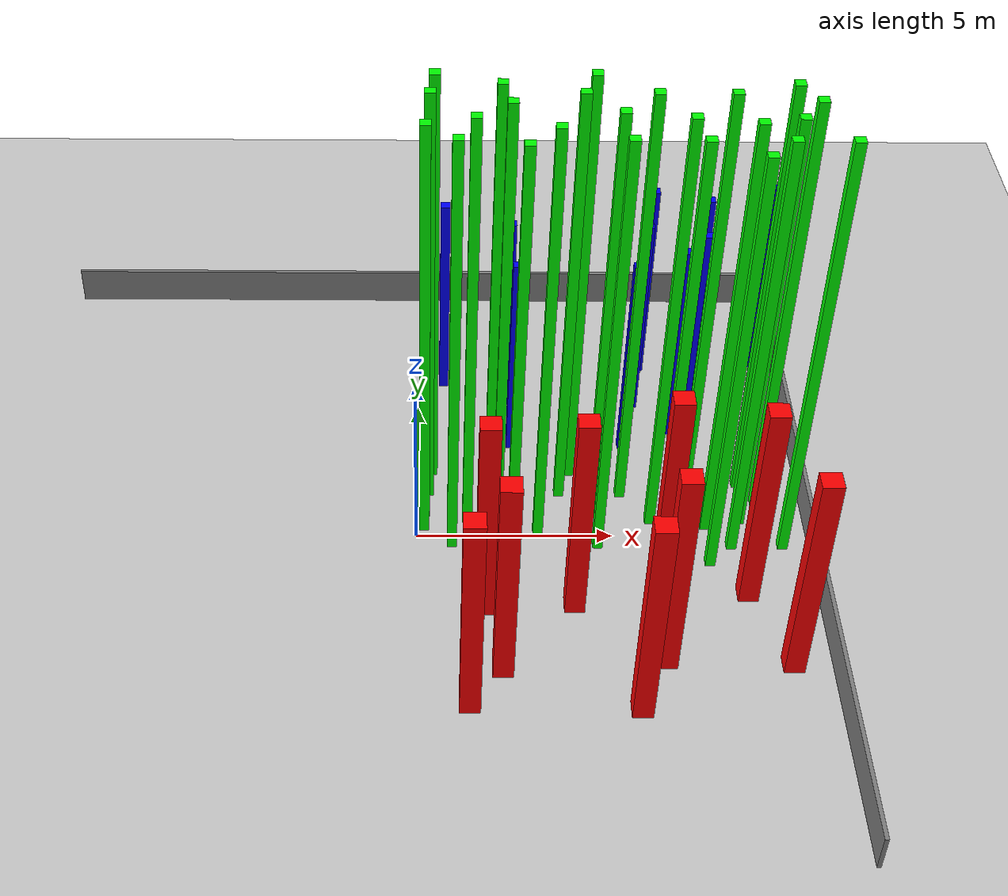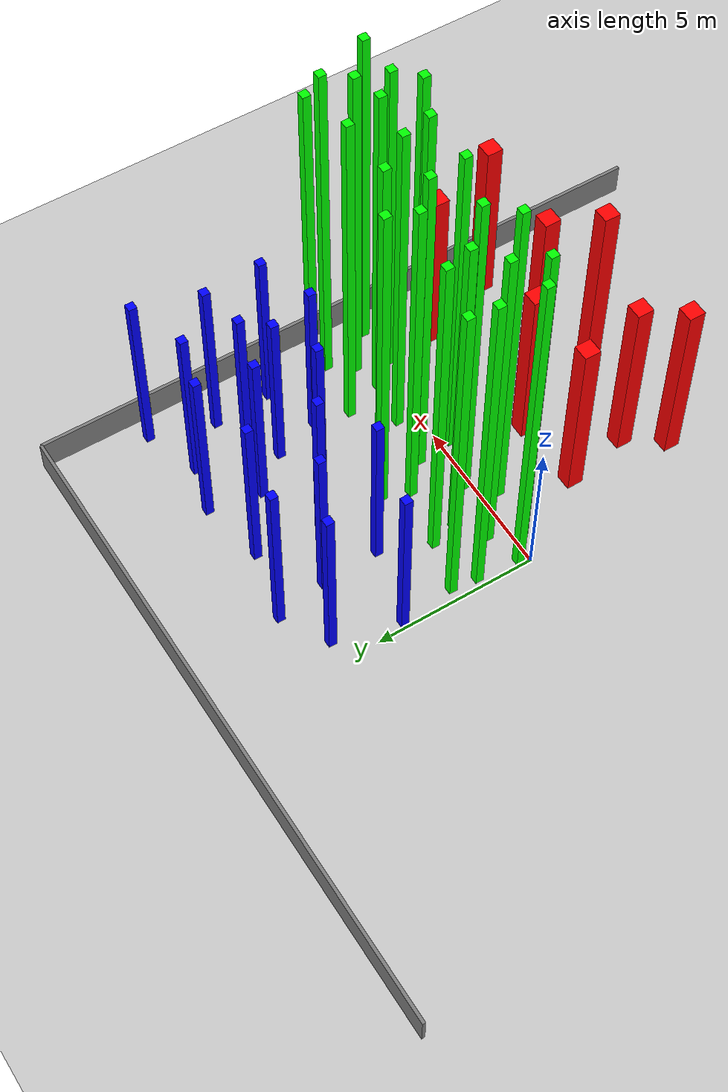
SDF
<sdf version="1.9">
 <world name="Penglai">
  <model name="ground_plane">
   <static>true</static>
   <link name="link">
    <collision name="collision">
     <geometry><plane><normal>0 0 1</normal><size>100 100</size></plane></geometry>
    </collision>
    <visual name="visual">
     <geometry><plane><normal>0 0 1</normal><size>100 100</size></plane></geometry>
     <material>
      <ambient>0.8 0.8 0.8 1</ambient>
      <diffuse>0.8 0.8 0.8 1</diffuse>
      <specular>0.8 0.8 0.8 1</specular>
     </material>
    </visual>
    <inertial>
     <mass>1</mass>
     <inertia><ixx>1</ixx><ixy>0</ixy><ixz>0</ixz><iyy>1</iyy><iyz>0</iyz><izz>1</izz></inertia>
    </inertial>
   </link>
  </model>
  <model name="wall_2">
   <static>true</static>
   <type>wall</type>
   <pose>10.000000 0.000000 0.500000 0 0 1.570796</pose>
   <link name="link">
    <collision name="collision">
     <geometry><box><size>20.000000 0.100000 1.000000</size></box></geometry>
    </collision>
    <visual name="visual">
     <geometry><box><size>20.000000 0.100000 1.000000</size></box></geometry>
     <material><diffuse>0.5 0.5 0.5 1</diffuse></material>
    </visual>
   </link>
  </model>
  <model name="wall_3">
   <static>true</static>
   <type>wall</type>
   <pose>0.000000 10.000000 0.500000 0 0 3.141593</pose>
   <link name="link">
    <collision name="collision">
     <geometry><box><size>20.000000 0.100000 1.000000</size></box></geometry>
    </collision>
    <visual name="visual">
     <geometry><box><size>20.000000 0.100000 1.000000</size></box></geometry>
     <material><diffuse>0.5 0.5 0.5 1</diffuse></material>
    </visual>
   </link>
  </model>
  <model name="box_6">
   <static>true</static>
   <type>box</type>
   <pose>0.700000 6.100000 3.000000 0 0 0</pose>
   <link name="link">
    <collision name="collision">
     <geometry><box><size>0.250000 0.250000 6.000000</size></box></geometry>
    </collision>
    <visual name="visual">
     <geometry><box><size>0.250000 0.250000 6.000000</size></box></geometry>
     <material><diffuse>0 0 1 1</diffuse></material>
    </visual>
   </link>
  </model>
  <model name="box_7">
   <static>true</static>
   <type>box</type>
   <pose>0.200000 4.100000 3.000000 0 0 0</pose>
   <link name="link">
    <collision name="collision">
     <geometry><box><size>0.250000 0.250000 6.000000</size></box></geometry>
    </collision>
    <visual name="visual">
     <geometry><box><size>0.250000 0.250000 6.000000</size></box></geometry>
     <material><diffuse>0 0 1 1</diffuse></material>
    </visual>
   </link>
  </model>
  <model name="box_8">
   <static>true</static>
   <type>box</type>
   <pose>2.400000 5.300000 3.000000 0 0 0</pose>
   <link name="link">
    <collision name="collision">
     <geometry><box><size>0.250000 0.250000 6.000000</size></box></geometry>
    </collision>
    <visual name="visual">
     <geometry><box><size>0.250000 0.250000 6.000000</size></box></geometry>
     <material><diffuse>0 0 1 1</diffuse></material>
    </visual>
   </link>
  </model>
  <model name="box_9">
   <static>true</static>
   <type>box</type>
   <pose>4.200000 6.400000 3.000000 0 0 0</pose>
   <link name="link">
    <collision name="collision">
     <geometry><box><size>0.250000 0.250000 6.000000</size></box></geometry>
    </collision>
    <visual name="visual">
     <geometry><box><size>0.250000 0.250000 6.000000</size></box></geometry>
     <material><diffuse>0 0 1 1</diffuse></material>
    </visual>
   </link>
  </model>
  <model name="box_10">
   <static>true</static>
   <type>box</type>
   <pose>5.900000 5.200000 3.000000 0 0 0</pose>
   <link name="link">
    <collision name="collision">
     <geometry><box><size>0.250000 0.250000 6.000000</size></box></geometry>
    </collision>
    <visual name="visual">
     <geometry><box><size>0.250000 0.250000 6.000000</size></box></geometry>
     <material><diffuse>0 0 1 1</diffuse></material>
    </visual>
   </link>
  </model>
  <model name="box_11">
   <static>true</static>
   <type>box</type>
   <pose>4.000000 4.400000 3.000000 0 0 0</pose>
   <link name="link">
    <collision name="collision">
     <geometry><box><size>0.250000 0.250000 6.000000</size></box></geometry>
    </collision>
    <visual name="visual">
     <geometry><box><size>0.250000 0.250000 6.000000</size></box></geometry>
     <material><diffuse>0 0 1 1</diffuse></material>
    </visual>
   </link>
  </model>
  <model name="box_12">
   <static>true</static>
   <type>box</type>
   <pose>6.800000 4.100000 3.000000 0 0 0</pose>
   <link name="link">
    <collision name="collision">
     <geometry><box><size>0.250000 0.250000 6.000000</size></box></geometry>
    </collision>
    <visual name="visual">
     <geometry><box><size>0.250000 0.250000 6.000000</size></box></geometry>
     <material><diffuse>0 0 1 1</diffuse></material>
    </visual>
   </link>
  </model>
  <model name="box_13">
   <static>true</static>
   <type>box</type>
   <pose>7.400000 4.800000 3.000000 0 0 0</pose>
   <link name="link">
    <collision name="collision">
     <geometry><box><size>0.250000 0.250000 6.000000</size></box></geometry>
    </collision>
    <visual name="visual">
     <geometry><box><size>0.250000 0.250000 6.000000</size></box></geometry>
     <material><diffuse>0 0 1 1</diffuse></material>
    </visual>
   </link>
  </model>
  <model name="box_14">
   <static>true</static>
   <type>box</type>
   <pose>8.700000 5.100000 3.000000 0 0 0</pose>
   <link name="link">
    <collision name="collision">
     <geometry><box><size>0.250000 0.250000 6.000000</size></box></geometry>
    </collision>
    <visual name="visual">
     <geometry><box><size>0.250000 0.250000 6.000000</size></box></geometry>
     <material><diffuse>0 0 1 1</diffuse></material>
    </visual>
   </link>
  </model>
  <model name="box_15">
   <static>true</static>
   <type>box</type>
   <pose>7.600000 6.400000 3.000000 0 0 0</pose>
   <link name="link">
    <collision name="collision">
     <geometry><box><size>0.250000 0.250000 6.000000</size></box></geometry>
    </collision>
    <visual name="visual">
     <geometry><box><size>0.250000 0.250000 6.000000</size></box></geometry>
     <material><diffuse>0 0 1 1</diffuse></material>
    </visual>
   </link>
  </model>
  <model name="box_16">
   <static>true</static>
   <type>box</type>
   <pose>8.800000 3.300000 3.000000 0 0 0</pose>
   <link name="link">
    <collision name="collision">
     <geometry><box><size>0.250000 0.250000 6.000000</size></box></geometry>
    </collision>
    <visual name="visual">
     <geometry><box><size>0.250000 0.250000 6.000000</size></box></geometry>
     <material><diffuse>0 0 1 1</diffuse></material>
    </visual>
   </link>
  </model>
  <model name="box_24">
   <static>true</static>
   <type>box</type>
   <pose>2.500000 3.500000 3.000000 0 0 0</pose>
   <link name="link">
    <collision name="collision">
     <geometry><box><size>0.250000 0.250000 6.000000</size></box></geometry>
    </collision>
    <visual name="visual">
     <geometry><box><size>0.250000 0.250000 6.000000</size></box></geometry>
     <material><diffuse>0 0 1 1</diffuse></material>
    </visual>
   </link>
  </model>
  <model name="box_25">
   <static>true</static>
   <type>box</type>
   <pose>5.500000 3.500000 3.000000 0 0 0</pose>
   <link name="link">
    <collision name="collision">
     <geometry><box><size>0.250000 0.250000 6.000000</size></box></geometry>
    </collision>
    <visual name="visual">
     <geometry><box><size>0.250000 0.250000 6.000000</size></box></geometry>
     <material><diffuse>0 0 1 1</diffuse></material>
    </visual>
   </link>
  </model>
  <model name="box_26">
   <static>true</static>
   <type>box</type>
   <pose>2.100000 6.900000 3.000000 0 0 0</pose>
   <link name="link">
    <collision name="collision">
     <geometry><box><size>0.250000 0.250000 6.000000</size></box></geometry>
    </collision>
    <visual name="visual">
     <geometry><box><size>0.250000 0.250000 6.000000</size></box></geometry>
     <material><diffuse>0 0 1 1</diffuse></material>
    </visual>
   </link>
  </model>
  <model name="box_27">
   <static>true</static>
   <type>box</type>
   <pose>6.200000 6.800000 3.000000 0 0 0</pose>
   <link name="link">
    <collision name="collision">
     <geometry><box><size>0.250000 0.250000 6.000000</size></box></geometry>
    </collision>
    <visual name="visual">
     <geometry><box><size>0.250000 0.250000 6.000000</size></box></geometry>
     <material><diffuse>0 0 1 1</diffuse></material>
    </visual>
   </link>
  </model>
  <model name="box_29">
   <static>true</static>
   <type>box</type>
   <pose>7.200000 2.700000 3.000000 0 0 0</pose>
   <link name="link">
    <collision name="collision">
     <geometry><box><size>0.250000 0.250000 6.000000</size></box></geometry>
    </collision>
    <visual name="visual">
     <geometry><box><size>0.250000 0.250000 6.000000</size></box></geometry>
     <material><diffuse>0 0 1 1</diffuse></material>
    </visual>
   </link>
  </model>
  <model name="box_30">
   <static>true</static>
   <type>box</type>
   <pose>9.300000 7.000000 3.000000 0 0 0</pose>
   <link name="link">
    <collision name="collision">
     <geometry><box><size>0.250000 0.250000 6.000000</size></box></geometry>
    </collision>
    <visual name="visual">
     <geometry><box><size>0.250000 0.250000 6.000000</size></box></geometry>
     <material><diffuse>0 0 1 1</diffuse></material>
    </visual>
   </link>
  </model>
  <model name="box_51">
   <static>true</static>
   <type>box</type>
   <pose>0.300000 1.600000 6.000000 0 0 0</pose>
   <link name="link">
    <collision name="collision">
     <geometry><box><size>0.250000 0.250000 12.000000</size></box></geometry>
    </collision>
    <visual name="visual">
     <geometry><box><size>0.250000 0.250000 12.000000</size></box></geometry>
     <material><diffuse>0 1 0 1</diffuse></material>
    </visual>
   </link>
  </model>
  <model name="box_52">
   <static>true</static>
   <type>box</type>
   <pose>0.400000 2.400000 6.000000 0 0 0</pose>
   <link name="link">
    <collision name="collision">
     <geometry><box><size>0.250000 0.250000 12.000000</size></box></geometry>
    </collision>
    <visual name="visual">
     <geometry><box><size>0.250000 0.250000 12.000000</size></box></geometry>
     <material><diffuse>0 1 0 1</diffuse></material>
    </visual>
   </link>
  </model>
  <model name="box_53">
   <static>true</static>
   <type>box</type>
   <pose>1.900000 2.000000 6.000000 0 0 0</pose>
   <link name="link">
    <collision name="collision">
     <geometry><box><size>0.250000 0.250000 12.000000</size></box></geometry>
    </collision>
    <visual name="visual">
     <geometry><box><size>0.250000 0.250000 12.000000</size></box></geometry>
     <material><diffuse>0 1 0 1</diffuse></material>
    </visual>
   </link>
  </model>
  <model name="box_54">
   <static>true</static>
   <type>box</type>
   <pose>2.100000 1.200000 6.000000 0 0 0</pose>
   <link name="link">
    <collision name="collision">
     <geometry><box><size>0.250000 0.250000 12.000000</size></box></geometry>
    </collision>
    <visual name="visual">
     <geometry><box><size>0.250000 0.250000 12.000000</size></box></geometry>
     <material><diffuse>0 1 0 1</diffuse></material>
    </visual>
   </link>
  </model>
  <model name="box_55">
   <static>true</static>
   <type>box</type>
   <pose>1.300000 0.600000 6.000000 0 0 0</pose>
   <link name="link">
    <collision name="collision">
     <geometry><box><size>0.250000 0.250000 12.000000</size></box></geometry>
    </collision>
    <visual name="visual">
     <geometry><box><size>0.250000 0.250000 12.000000</size></box></geometry>
     <material><diffuse>0 1 0 1</diffuse></material>
    </visual>
   </link>
  </model>
  <model name="box_56">
   <static>true</static>
   <type>box</type>
   <pose>0.900000 -0.300000 6.000000 0 0 0</pose>
   <link name="link">
    <collision name="collision">
     <geometry><box><size>0.250000 0.250000 12.000000</size></box></geometry>
    </collision>
    <visual name="visual">
     <geometry><box><size>0.250000 0.250000 12.000000</size></box></geometry>
     <material><diffuse>0 1 0 1</diffuse></material>
    </visual>
   </link>
  </model>
  <model name="box_57">
   <static>true</static>
   <type>box</type>
   <pose>0.200000 0.300000 6.000000 0 0 0</pose>
   <link name="link">
    <collision name="collision">
     <geometry><box><size>0.250000 0.250000 12.000000</size></box></geometry>
    </collision>
    <visual name="visual">
     <geometry><box><size>0.250000 0.250000 12.000000</size></box></geometry>
     <material><diffuse>0 1 0 1</diffuse></material>
    </visual>
   </link>
  </model>
  <model name="box_59">
   <static>true</static>
   <type>box</type>
   <pose>2.400000 -0.500000 6.000000 0 0 0</pose>
   <link name="link">
    <collision name="collision">
     <geometry><box><size>0.250000 0.250000 12.000000</size></box></geometry>
    </collision>
    <visual name="visual">
     <geometry><box><size>0.250000 0.250000 12.000000</size></box></geometry>
     <material><diffuse>0 1 0 1</diffuse></material>
    </visual>
   </link>
  </model>
  <model name="box_60">
   <static>true</static>
   <type>box</type>
   <pose>3.100000 0.200000 6.000000 0 0 0</pose>
   <link name="link">
    <collision name="collision">
     <geometry><box><size>0.250000 0.250000 12.000000</size></box></geometry>
    </collision>
    <visual name="visual">
     <geometry><box><size>0.250000 0.250000 12.000000</size></box></geometry>
     <material><diffuse>0 1 0 1</diffuse></material>
    </visual>
   </link>
  </model>
  <model name="box_61">
   <static>true</static>
   <type>box</type>
   <pose>3.700000 1.600000 6.000000 0 0 0</pose>
   <link name="link">
    <collision name="collision">
     <geometry><box><size>0.250000 0.250000 12.000000</size></box></geometry>
    </collision>
    <visual name="visual">
     <geometry><box><size>0.250000 0.250000 12.000000</size></box></geometry>
     <material><diffuse>0 1 0 1</diffuse></material>
    </visual>
   </link>
  </model>
  <model name="box_62">
   <static>true</static>
   <type>box</type>
   <pose>4.000000 2.400000 6.000000 0 0 0</pose>
   <link name="link">
    <collision name="collision">
     <geometry><box><size>0.250000 0.250000 12.000000</size></box></geometry>
    </collision>
    <visual name="visual">
     <geometry><box><size>0.250000 0.250000 12.000000</size></box></geometry>
     <material><diffuse>0 1 0 1</diffuse></material>
    </visual>
   </link>
  </model>
  <model name="box_63">
   <static>true</static>
   <type>box</type>
   <pose>5.300000 1.600000 6.000000 0 0 0</pose>
   <link name="link">
    <collision name="collision">
     <geometry><box><size>0.250000 0.250000 12.000000</size></box></geometry>
    </collision>
    <visual name="visual">
     <geometry><box><size>0.250000 0.250000 12.000000</size></box></geometry>
     <material><diffuse>0 1 0 1</diffuse></material>
    </visual>
   </link>
  </model>
  <model name="box_64">
   <static>true</static>
   <type>box</type>
   <pose>4.500000 0.800000 6.000000 0 0 0</pose>
   <link name="link">
    <collision name="collision">
     <geometry><box><size>0.250000 0.250000 12.000000</size></box></geometry>
    </collision>
    <visual name="visual">
     <geometry><box><size>0.250000 0.250000 12.000000</size></box></geometry>
     <material><diffuse>0 1 0 1</diffuse></material>
    </visual>
   </link>
  </model>
  <model name="box_65">
   <static>true</static>
   <type>box</type>
   <pose>4.600000 -0.300000 6.000000 0 0 0</pose>
   <link name="link">
    <collision name="collision">
     <geometry><box><size>0.250000 0.250000 12.000000</size></box></geometry>
    </collision>
    <visual name="visual">
     <geometry><box><size>0.250000 0.250000 12.000000</size></box></geometry>
     <material><diffuse>0 1 0 1</diffuse></material>
    </visual>
   </link>
  </model>
  <model name="box_66">
   <static>true</static>
   <type>box</type>
   <pose>6.200000 -0.300000 6.000000 0 0 0</pose>
   <link name="link">
    <collision name="collision">
     <geometry><box><size>0.250000 0.250000 12.000000</size></box></geometry>
    </collision>
    <visual name="visual">
     <geometry><box><size>0.250000 0.250000 12.000000</size></box></geometry>
     <material><diffuse>0 1 0 1</diffuse></material>
    </visual>
   </link>
  </model>
  <model name="box_67">
   <static>true</static>
   <type>box</type>
   <pose>6.000000 0.600000 6.000000 0 0 0</pose>
   <link name="link">
    <collision name="collision">
     <geometry><box><size>0.250000 0.250000 12.000000</size></box></geometry>
    </collision>
    <visual name="visual">
     <geometry><box><size>0.250000 0.250000 12.000000</size></box></geometry>
     <material><diffuse>0 1 0 1</diffuse></material>
    </visual>
   </link>
  </model>
  <model name="box_68">
   <static>true</static>
   <type>box</type>
   <pose>7.000000 1.600000 6.000000 0 0 0</pose>
   <link name="link">
    <collision name="collision">
     <geometry><box><size>0.250000 0.250000 12.000000</size></box></geometry>
    </collision>
    <visual name="visual">
     <geometry><box><size>0.250000 0.250000 12.000000</size></box></geometry>
     <material><diffuse>0 1 0 1</diffuse></material>
    </visual>
   </link>
  </model>
  <model name="box_69">
   <static>true</static>
   <type>box</type>
   <pose>7.400000 0.400000 6.000000 0 0 0</pose>
   <link name="link">
    <collision name="collision">
     <geometry><box><size>0.250000 0.250000 12.000000</size></box></geometry>
    </collision>
    <visual name="visual">
     <geometry><box><size>0.250000 0.250000 12.000000</size></box></geometry>
     <material><diffuse>0 1 0 1</diffuse></material>
    </visual>
   </link>
  </model>
  <model name="box_70">
   <static>true</static>
   <type>box</type>
   <pose>8.000000 -0.300000 6.000000 0 0 0</pose>
   <link name="link">
    <collision name="collision">
     <geometry><box><size>0.250000 0.250000 12.000000</size></box></geometry>
    </collision>
    <visual name="visual">
     <geometry><box><size>0.250000 0.250000 12.000000</size></box></geometry>
     <material><diffuse>0 1 0 1</diffuse></material>
    </visual>
   </link>
  </model>
  <model name="box_71">
   <static>true</static>
   <type>box</type>
   <pose>8.800000 1.300000 6.000000 0 0 0</pose>
   <link name="link">
    <collision name="collision">
     <geometry><box><size>0.250000 0.250000 12.000000</size></box></geometry>
    </collision>
    <visual name="visual">
     <geometry><box><size>0.250000 0.250000 12.000000</size></box></geometry>
     <material><diffuse>0 1 0 1</diffuse></material>
    </visual>
   </link>
  </model>
  <model name="box_72">
   <static>true</static>
   <type>box</type>
   <pose>9.300000 -0.300000 6.000000 0 0 0</pose>
   <link name="link">
    <collision name="collision">
     <geometry><box><size>0.250000 0.250000 12.000000</size></box></geometry>
    </collision>
    <visual name="visual">
     <geometry><box><size>0.250000 0.250000 12.000000</size></box></geometry>
     <material><diffuse>0 1 0 1</diffuse></material>
    </visual>
   </link>
  </model>
  <model name="box_73">
   <static>true</static>
   <type>box</type>
   <pose>8.300000 0.600000 6.000000 0 0 0</pose>
   <link name="link">
    <collision name="collision">
     <geometry><box><size>0.250000 0.250000 12.000000</size></box></geometry>
    </collision>
    <visual name="visual">
     <geometry><box><size>0.250000 0.250000 12.000000</size></box></geometry>
     <material><diffuse>0 1 0 1</diffuse></material>
    </visual>
   </link>
  </model>
  <model name="box_74">
   <static>true</static>
   <type>box</type>
   <pose>8.400000 2.000000 6.000000 0 0 0</pose>
   <link name="link">
    <collision name="collision">
     <geometry><box><size>0.250000 0.250000 12.000000</size></box></geometry>
    </collision>
    <visual name="visual">
     <geometry><box><size>0.250000 0.250000 12.000000</size></box></geometry>
     <material><diffuse>0 1 0 1</diffuse></material>
    </visual>
   </link>
  </model>
  <model name="box_80">
   <static>true</static>
   <type>box</type>
   <pose>7.400000 -0.900000 6.000000 0 0 0</pose>
   <link name="link">
    <collision name="collision">
     <geometry><box><size>0.250000 0.250000 12.000000</size></box></geometry>
    </collision>
    <visual name="visual">
     <geometry><box><size>0.250000 0.250000 12.000000</size></box></geometry>
     <material><diffuse>0 1 0 1</diffuse></material>
    </visual>
   </link>
  </model>
  <model name="box_89">
   <static>true</static>
   <type>box</type>
   <pose>2.100000 -4.500000 3.000000 0 0 0</pose>
   <link name="link">
    <collision name="collision">
     <geometry><box><size>0.500000 0.500000 6.000000</size></box></geometry>
    </collision>
    <visual name="visual">
     <geometry><box><size>0.500000 0.500000 6.000000</size></box></geometry>
     <material><diffuse>1 0 0 1</diffuse></material>
    </visual>
   </link>
  </model>
  <model name="box_90">
   <static>true</static>
   <type>box</type>
   <pose>6.000000 -4.200000 3.000000 0 0 0</pose>
   <link name="link">
    <collision name="collision">
     <geometry><box><size>0.500000 0.500000 6.000000</size></box></geometry>
    </collision>
    <visual name="visual">
     <geometry><box><size>0.500000 0.500000 6.000000</size></box></geometry>
     <material><diffuse>1 0 0 1</diffuse></material>
    </visual>
   </link>
  </model>
  <model name="box_91">
   <static>true</static>
   <type>box</type>
   <pose>8.200000 -2.000000 3.000000 0 0 0</pose>
   <link name="link">
    <collision name="collision">
     <geometry><box><size>0.500000 0.500000 6.000000</size></box></geometry>
    </collision>
    <visual name="visual">
     <geometry><box><size>0.500000 0.500000 6.000000</size></box></geometry>
     <material><diffuse>1 0 0 1</diffuse></material>
    </visual>
   </link>
  </model>
  <model name="box_92">
   <static>true</static>
   <type>box</type>
   <pose>9.000000 -4.300000 3.000000 0 0 0</pose>
   <link name="link">
    <collision name="collision">
     <geometry><box><size>0.500000 0.500000 6.000000</size></box></geometry>
    </collision>
    <visual name="visual">
     <geometry><box><size>0.500000 0.500000 6.000000</size></box></geometry>
     <material><diffuse>1 0 0 1</diffuse></material>
    </visual>
   </link>
  </model>
  <model name="box_93">
   <static>true</static>
   <type>box</type>
   <pose>3.900000 -2.400000 3.000000 0 0 0</pose>
   <link name="link">
    <collision name="collision">
     <geometry><box><size>0.500000 0.500000 6.000000</size></box></geometry>
    </collision>
    <visual name="visual">
     <geometry><box><size>0.500000 0.500000 6.000000</size></box></geometry>
     <material><diffuse>1 0 0 1</diffuse></material>
    </visual>
   </link>
  </model>
  <model name="box_94">
   <static>true</static>
   <type>box</type>
   <pose>1.700000 -2.500000 3.000000 0 0 0</pose>
   <link name="link">
    <collision name="collision">
     <geometry><box><size>0.500000 0.500000 6.000000</size></box></geometry>
    </collision>
    <visual name="visual">
     <geometry><box><size>0.500000 0.500000 6.000000</size></box></geometry>
     <material><diffuse>1 0 0 1</diffuse></material>
    </visual>
   </link>
  </model>
  <model name="box_95">
   <static>true</static>
   <type>box</type>
   <pose>6.100000 -1.600000 3.000000 0 0 0</pose>
   <link name="link">
    <collision name="collision">
     <geometry><box><size>0.500000 0.500000 6.000000</size></box></geometry>
    </collision>
    <visual name="visual">
     <geometry><box><size>0.500000 0.500000 6.000000</size></box></geometry>
     <material><diffuse>1 0 0 1</diffuse></material>
    </visual>
   </link>
  </model>
  <model name="box_98">
   <static>true</static>
   <type>box</type>
   <pose>1.300000 -5.600000 3.000000 0 0 0</pose>
   <link name="link">
    <collision name="collision">
     <geometry><box><size>0.500000 0.500000 6.000000</size></box></geometry>
    </collision>
    <visual name="visual">
     <geometry><box><size>0.500000 0.500000 6.000000</size></box></geometry>
     <material><diffuse>1 0 0 1</diffuse></material>
    </visual>
   </link>
  </model>
  <model name="box_99">
   <static>true</static>
   <type>box</type>
   <pose>5.300000 -5.700000 3.000000 0 0 0</pose>
   <link name="link">
    <collision name="collision">
     <geometry><box><size>0.500000 0.500000 6.000000</size></box></geometry>
    </collision>
    <visual name="visual">
     <geometry><box><size>0.500000 0.500000 6.000000</size></box></geometry>
     <material><diffuse>1 0 0 1</diffuse></material>
    </visual>
   </link>
  </model>
 </world>
</sdf>
